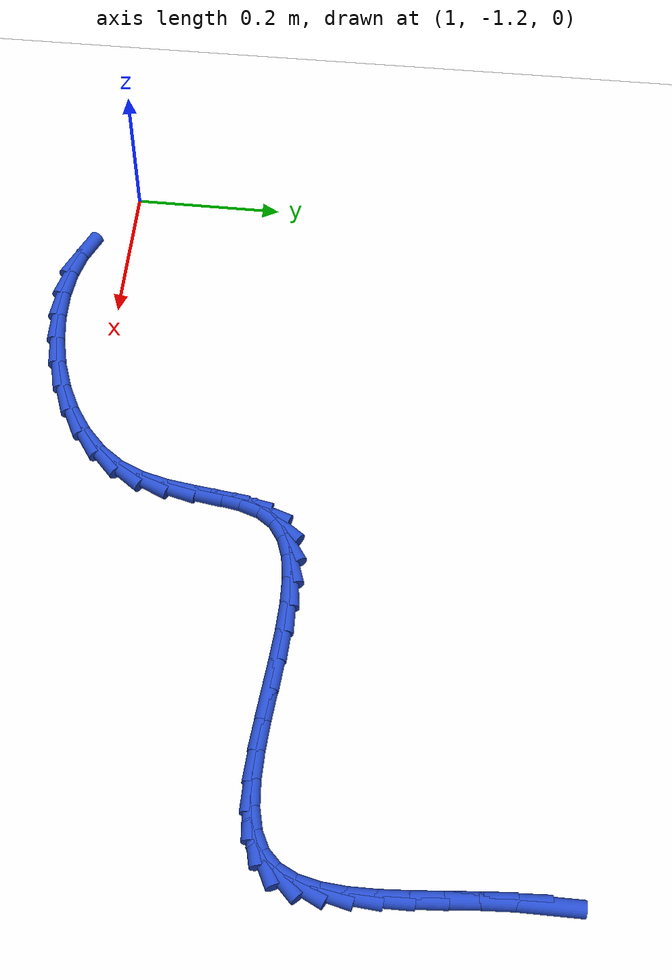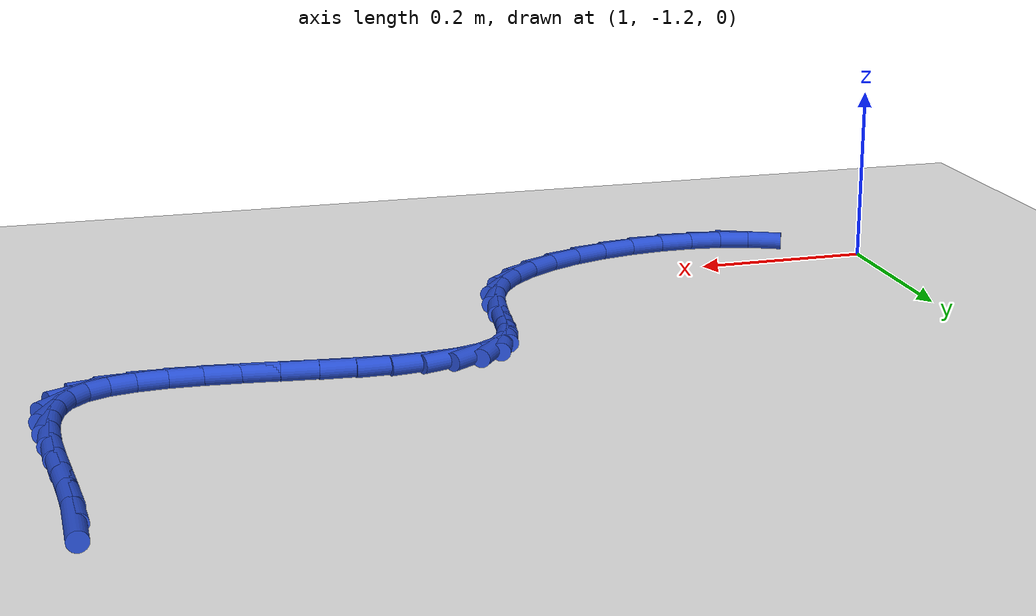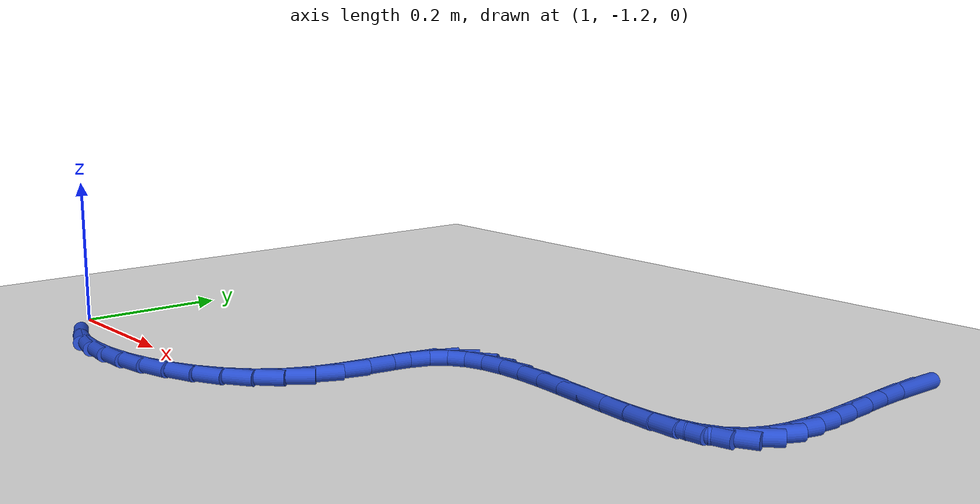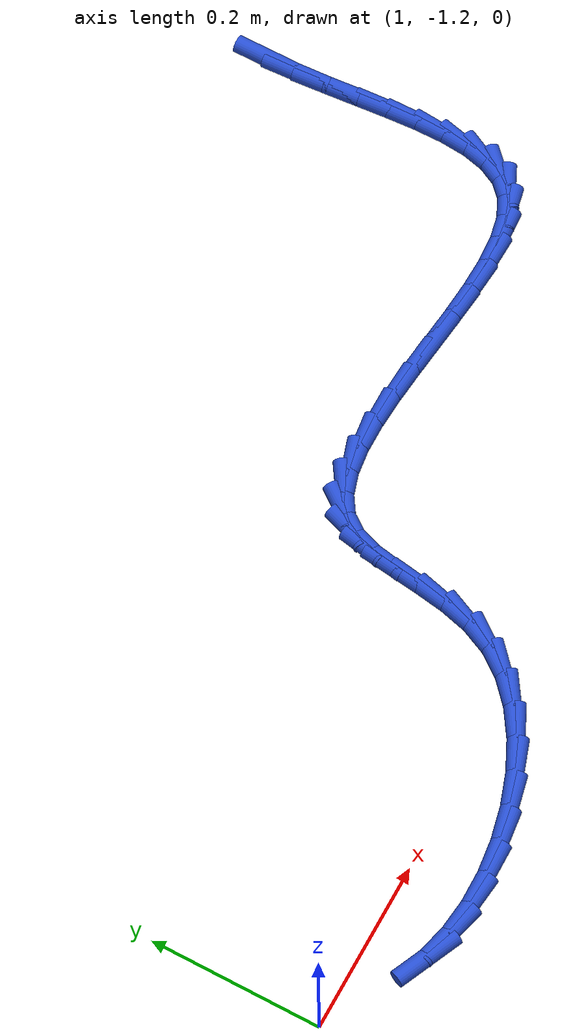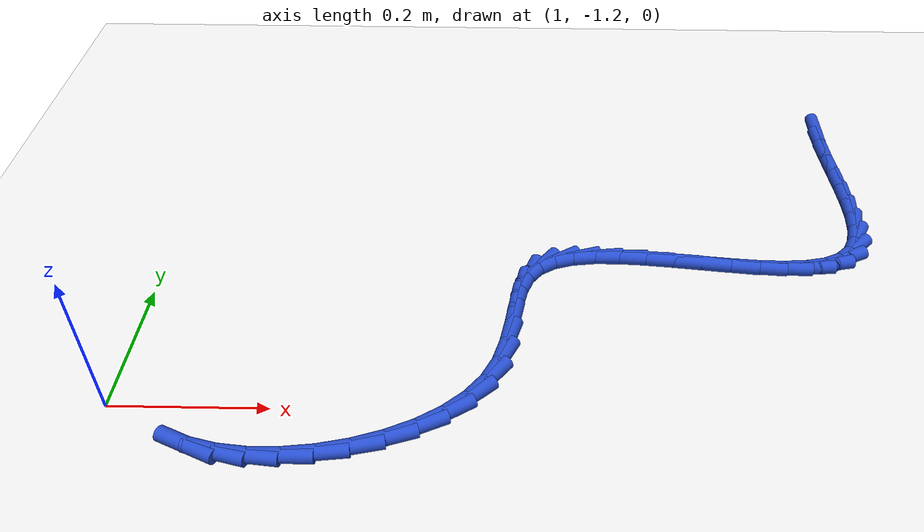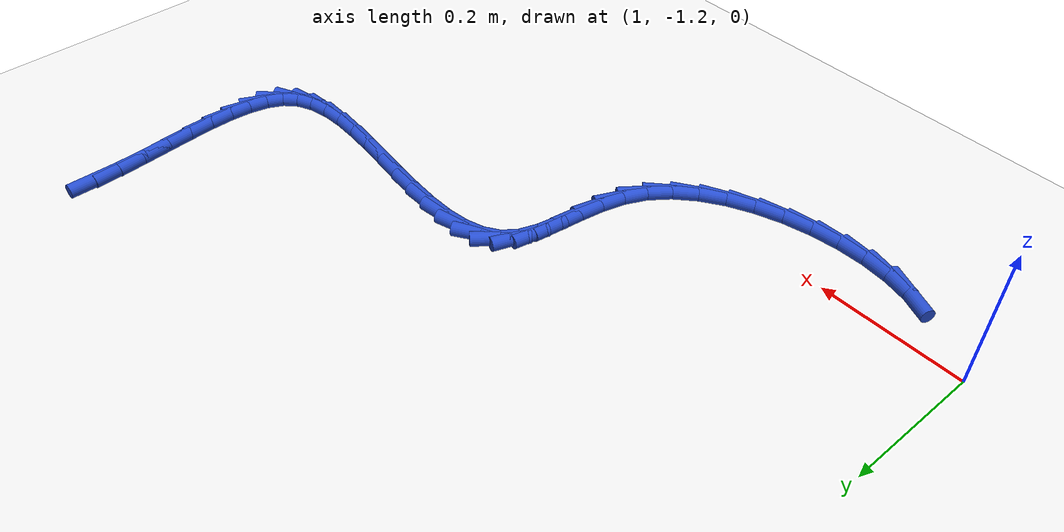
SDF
<sdf version="1.6">
 <world name="default">
  <model name="ground_plane">
   <static>1</static>
   <link name="link">
    <collision name="collision">
     <geometry><plane><normal>0 0 1</normal><size>100 100</size></plane></geometry>
     <surface><friction><ode><mu>100</mu><mu2>50</mu2></ode></friction></surface>
    </collision>
    <visual name="visual">
     <cast_shadows>0</cast_shadows>
     <geometry><plane><normal>0 0 1</normal><size>100 100</size></plane></geometry>
     <material>
      <script><uri>file://media/materials/scripts/gazebo.material</uri><name>Gazebo/WhiteGlow</name></script>
     </material>
    </visual>
   </link>
  </model>
  <model name="line">
   <link name="link_140">
    <pose>1.9676121689241 -0.609923376847804 0.01 0 1.57 1.5692304864770894</pose>
    <collision name="collision">
     <geometry><cylinder><radius>0.01</radius><length>0.08</length></cylinder></geometry>
    </collision>
    <visual name="visual">
     <material>
      <script><name>Gazebo/Blue</name><uri>file://media/materials/scripts/gazebo.material</uri></script>
     </material>
     <geometry><cylinder><radius>0.01</radius><length>0.08</length></cylinder></geometry>
    </visual>
   </link>
   <link name="link_141">
    <pose>1.9675563326440466 -0.6455823350341395 0.01 0 1.57 -1.518326134980468</pose>
    <collision name="collision">
     <geometry><cylinder><radius>0.01</radius><length>0.08</length></cylinder></geometry>
    </collision>
    <visual name="visual">
     <material>
      <script><name>Gazebo/Blue</name><uri>file://media/materials/scripts/gazebo.material</uri></script>
     </material>
     <geometry><cylinder><radius>0.01</radius><length>0.08</length></cylinder></geometry>
    </visual>
   </link>
   <link name="link_142">
    <pose>1.9695000412162742 -0.6825923863149759 0.01 0 1.57 -1.4916581907190145</pose>
    <collision name="collision">
     <geometry><cylinder><radius>0.01</radius><length>0.08</length></cylinder></geometry>
    </collision>
    <visual name="visual">
     <material>
      <script><name>Gazebo/Blue</name><uri>file://media/materials/scripts/gazebo.material</uri></script>
     </material>
     <geometry><cylinder><radius>0.01</radius><length>0.08</length></cylinder></geometry>
    </visual>
   </link>
   <link name="link_143">
    <pose>1.9724734283568273 -0.7200860323277587 0.01 0 1.57 -1.4892416868877896</pose>
    <collision name="collision">
     <geometry><cylinder><radius>0.01</radius><length>0.08</length></cylinder></geometry>
    </collision>
    <visual name="visual">
     <material>
      <script><name>Gazebo/Blue</name><uri>file://media/materials/scripts/gazebo.material</uri></script>
     </material>
     <geometry><cylinder><radius>0.01</radius><length>0.08</length></cylinder></geometry>
    </visual>
   </link>
   <link name="link_144">
    <pose>1.9755066277817512 -0.7571957747099342 0.01 0 1.57 -1.511656122698461</pose>
    <collision name="collision">
     <geometry><cylinder><radius>0.01</radius><length>0.08</length></cylinder></geometry>
    </collision>
    <visual name="visual">
     <material>
      <script><name>Gazebo/Blue</name><uri>file://media/materials/scripts/gazebo.material</uri></script>
     </material>
     <geometry><cylinder><radius>0.01</radius><length>0.08</length></cylinder></geometry>
    </visual>
   </link>
   <link name="link_145">
    <pose>1.9776297732070909 -0.7930541150989483 0.01 0 1.57 -1.563587525216265</pose>
    <collision name="collision">
     <geometry><cylinder><radius>0.01</radius><length>0.08</length></cylinder></geometry>
    </collision>
    <visual name="visual">
     <material>
      <script><name>Gazebo/Blue</name><uri>file://media/materials/scripts/gazebo.material</uri></script>
     </material>
     <geometry><cylinder><radius>0.01</radius><length>0.08</length></cylinder></geometry>
    </visual>
   </link>
   <link name="link_146">
    <pose>1.977872998348892 -0.8267935551322472 0.01 0 1.57 1.4862405778517631</pose>
    <collision name="collision">
     <geometry><cylinder><radius>0.01</radius><length>0.08</length></cylinder></geometry>
    </collision>
    <visual name="visual">
     <material>
      <script><name>Gazebo/Blue</name><uri>file://media/materials/scripts/gazebo.material</uri></script>
     </material>
     <geometry><cylinder><radius>0.01</radius><length>0.08</length></cylinder></geometry>
    </visual>
   </link>
   <link name="link_147">
    <pose>1.9752664369231987 -0.8575465964472774 0.01 0 1.57 1.3362913895076682</pose>
    <collision name="collision">
     <geometry><cylinder><radius>0.01</radius><length>0.08</length></cylinder></geometry>
    </collision>
    <visual name="visual">
     <material>
      <script><name>Gazebo/Blue</name><uri>file://media/materials/scripts/gazebo.material</uri></script>
     </material>
     <geometry><cylinder><radius>0.01</radius><length>0.08</length></cylinder></geometry>
    </visual>
   </link>
   <link name="link_148">
    <pose>1.9688402226460568 -0.8844457406814837 0.01 0 1.57 1.1025831131309387</pose>
    <collision name="collision">
     <geometry><cylinder><radius>0.01</radius><length>0.08</length></cylinder></geometry>
    </collision>
    <visual name="visual">
     <material>
      <script><name>Gazebo/Blue</name><uri>file://media/materials/scripts/gazebo.material</uri></script>
     </material>
     <geometry><cylinder><radius>0.01</radius><length>0.08</length></cylinder></geometry>
    </visual>
   </link>
   <link name="link_149">
    <pose>1.957624489233511 -0.9066234894723126 0.01 0 1.57 0.7749221417292437</pose>
    <collision name="collision">
     <geometry><cylinder><radius>0.01</radius><length>0.08</length></cylinder></geometry>
    </collision>
    <visual name="visual">
     <material>
      <script><name>Gazebo/Blue</name><uri>file://media/materials/scripts/gazebo.material</uri></script>
     </material>
     <geometry><cylinder><radius>0.01</radius><length>0.08</length></cylinder></geometry>
    </visual>
   </link>
   <link name="link_150">
    <pose>1.9406672859085614 -0.9232290754264477 0.01 0 1.57 0.4447990700205925</pose>
    <collision name="collision">
     <geometry><cylinder><radius>0.01</radius><length>0.08</length></cylinder></geometry>
    </collision>
    <visual name="visual">
     <material>
      <script><name>Gazebo/Blue</name><uri>file://media/materials/scripts/gazebo.material</uri></script>
     </material>
     <geometry><cylinder><radius>0.01</radius><length>0.08</length></cylinder></geometry>
    </visual>
   </link>
   <link name="link_151">
    <pose>1.917789819981604 -0.9341337695616988 0.01 0 1.57 0.2135807034820194</pose>
    <collision name="collision">
     <geometry><cylinder><radius>0.01</radius><length>0.08</length></cylinder></geometry>
    </collision>
    <visual name="visual">
     <material>
      <script><name>Gazebo/Blue</name><uri>file://media/materials/scripts/gazebo.material</uri></script>
     </material>
     <geometry><cylinder><radius>0.01</radius><length>0.08</length></cylinder></geometry>
    </visual>
   </link>
   <link name="link_152">
    <pose>1.8898644260725947 -0.940190471756593 0.01 0 1.57 0.06646694724918709</pose>
    <collision name="collision">
     <geometry><cylinder><radius>0.01</radius><length>0.08</length></cylinder></geometry>
    </collision>
    <visual name="visual">
     <material>
      <script><name>Gazebo/Blue</name><uri>file://media/materials/scripts/gazebo.material</uri></script>
     </material>
     <geometry><cylinder><radius>0.01</radius><length>0.08</length></cylinder></geometry>
    </visual>
   </link>
   <link name="link_153">
    <pose>1.857838597322433 -0.9423222710785557 0.01 0 1.57 -0.024726195959830867</pose>
    <collision name="collision">
     <geometry><cylinder><radius>0.01</radius><length>0.08</length></cylinder></geometry>
    </collision>
    <visual name="visual">
     <material>
      <script><name>Gazebo/Blue</name><uri>file://media/materials/scripts/gazebo.material</uri></script>
     </material>
     <geometry><cylinder><radius>0.01</radius><length>0.08</length></cylinder></geometry>
    </visual>
   </link>
   <link name="link_154">
    <pose>1.8226598268720169 -0.9414522565950116 0.01 0 1.57 -0.07871360746099239</pose>
    <collision name="collision">
     <geometry><cylinder><radius>0.01</radius><length>0.08</length></cylinder></geometry>
    </collision>
    <visual name="visual">
     <material>
      <script><name>Gazebo/Blue</name><uri>file://media/materials/scripts/gazebo.material</uri></script>
     </material>
     <geometry><cylinder><radius>0.01</radius><length>0.08</length></cylinder></geometry>
    </visual>
   </link>
   <link name="link_155">
    <pose>1.7852756078622454 -0.9385035173733866 0.01 0 1.57 -0.10581816235380348</pose>
    <collision name="collision">
     <geometry><cylinder><radius>0.01</radius><length>0.08</length></cylinder></geometry>
    </collision>
    <visual name="visual">
     <material>
      <script><name>Gazebo/Blue</name><uri>file://media/materials/scripts/gazebo.material</uri></script>
     </material>
     <geometry><cylinder><radius>0.01</radius><length>0.08</length></cylinder></geometry>
    </visual>
   </link>
   <link name="link_156">
    <pose>1.7466334334340192 -0.9343991424811056 0.01 0 1.57 -0.11088166288076765</pose>
    <collision name="collision">
     <geometry><cylinder><radius>0.01</radius><length>0.08</length></cylinder></geometry>
    </collision>
    <visual name="visual">
     <material>
      <script><name>Gazebo/Blue</name><uri>file://media/materials/scripts/gazebo.material</uri></script>
     </material>
     <geometry><cylinder><radius>0.01</radius><length>0.08</length></cylinder></geometry>
    </visual>
   </link>
   <link name="link_157">
    <pose>1.7076807967282364 -0.9300622209855935 0.01 0 1.57 -0.09488119201472095</pose>
    <collision name="collision">
     <geometry><cylinder><radius>0.01</radius><length>0.08</length></cylinder></geometry>
    </collision>
    <visual name="visual">
     <material>
      <script><name>Gazebo/Blue</name><uri>file://media/materials/scripts/gazebo.material</uri></script>
     </material>
     <geometry><cylinder><radius>0.01</radius><length>0.08</length></cylinder></geometry>
    </visual>
   </link>
   <link name="link_158">
    <pose>1.669365190885795 -0.926415841954276 0.01 0 1.57 -0.05528495201471022</pose>
    <collision name="collision">
     <geometry><cylinder><radius>0.01</radius><length>0.08</length></cylinder></geometry>
    </collision>
    <visual name="visual">
     <material>
      <script><name>Gazebo/Blue</name><uri>file://media/materials/scripts/gazebo.material</uri></script>
     </material>
     <geometry><cylinder><radius>0.01</radius><length>0.08</length></cylinder></geometry>
    </visual>
   </link>
   <link name="link_159">
    <pose>1.632634109047596 -0.9243830944545781 0.01 0 1.57 0.014735391951520621</pose>
    <collision name="collision">
     <geometry><cylinder><radius>0.01</radius><length>0.08</length></cylinder></geometry>
    </collision>
    <visual name="visual">
     <material>
      <script><name>Gazebo/Blue</name><uri>file://media/materials/scripts/gazebo.material</uri></script>
     </material>
     <geometry><cylinder><radius>0.01</radius><length>0.08</length></cylinder></geometry>
    </visual>
   </link>
   <link name="link_160">
    <pose>1.598435044354537 -0.9248870675539251 0.01 0 1.57 0.12832224449451998</pose>
    <collision name="collision">
     <geometry><cylinder><radius>0.01</radius><length>0.08</length></cylinder></geometry>
    </collision>
    <visual name="visual">
     <material>
      <script><name>Gazebo/Blue</name><uri>file://media/materials/scripts/gazebo.material</uri></script>
     </material>
     <geometry><cylinder><radius>0.01</radius><length>0.08</length></cylinder></geometry>
    </visual>
   </link>
   <link name="link_161">
    <pose>1.567715489947517 -0.9288508503197419 0.01 0 1.57 0.30739194207258724</pose>
    <collision name="collision">
     <geometry><cylinder><radius>0.01</radius><length>0.08</length></cylinder></geometry>
    </collision>
    <visual name="visual">
     <material>
      <script><name>Gazebo/Blue</name><uri>file://media/materials/scripts/gazebo.material</uri></script>
     </material>
     <geometry><cylinder><radius>0.01</radius><length>0.08</length></cylinder></geometry>
    </visual>
   </link>
   <link name="link_162">
    <pose>1.5414229389674348 -0.9371975318194542 0.01 0 1.57 0.5782526817857558</pose>
    <collision name="collision">
     <geometry><cylinder><radius>0.01</radius><length>0.08</length></cylinder></geometry>
    </collision>
    <visual name="visual">
     <material>
      <script><name>Gazebo/Blue</name><uri>file://media/materials/scripts/gazebo.material</uri></script>
     </material>
     <geometry><cylinder><radius>0.01</radius><length>0.08</length></cylinder></geometry>
    </visual>
   </link>
   <link name="link_163">
    <pose>1.5205048845551912 -0.950850201120487 0.01 0 1.57 0.9346391346036947</pose>
    <collision name="collision">
     <geometry><cylinder><radius>0.01</radius><length>0.08</length></cylinder></geometry>
    </collision>
    <visual name="visual">
     <material>
      <script><name>Gazebo/Blue</name><uri>file://media/materials/scripts/gazebo.material</uri></script>
     </material>
     <geometry><cylinder><radius>0.01</radius><length>0.08</length></cylinder></geometry>
    </visual>
   </link>
   <link name="link_164">
    <pose>1.5058530112106103 -0.9706878882355335 0.01 0 1.57 1.2351852532280605</pose>
    <collision name="collision">
     <geometry><cylinder><radius>0.01</radius><length>0.08</length></cylinder></geometry>
    </collision>
    <visual name="visual">
     <material>
      <script><name>Gazebo/Blue</name><uri>file://media/materials/scripts/gazebo.material</uri></script>
     </material>
     <geometry><cylinder><radius>0.01</radius><length>0.08</length></cylinder></geometry>
    </visual>
   </link>
   <link name="link_165">
    <pose>1.4968774821406716 -0.9964200116893044 0.01 0 1.57 1.3902369936929668</pose>
    <collision name="collision">
     <geometry><cylinder><radius>0.01</radius><length>0.08</length></cylinder></geometry>
    </collision>
    <visual name="visual">
     <material>
      <script><name>Gazebo/Blue</name><uri>file://media/materials/scripts/gazebo.material</uri></script>
     </material>
     <geometry><cylinder><radius>0.01</radius><length>0.08</length></cylinder></geometry>
    </visual>
   </link>
   <link name="link_166">
    <pose>1.4913878513955598 -1.0264923626347027 0.01 0 1.57 1.4412083538622218</pose>
    <collision name="collision">
     <geometry><cylinder><radius>0.01</radius><length>0.08</length></cylinder></geometry>
    </collision>
    <visual name="visual">
     <material>
      <script><name>Gazebo/Blue</name><uri>file://media/materials/scripts/gazebo.material</uri></script>
     </material>
     <geometry><cylinder><radius>0.01</radius><length>0.08</length></cylinder></geometry>
    </visual>
   </link>
   <link name="link_167">
    <pose>1.4871140021720457 -1.0592878347517032 0.01 0 1.57 1.4149048666156512</pose>
    <collision name="collision">
     <geometry><cylinder><radius>0.01</radius><length>0.08</length></cylinder></geometry>
    </collision>
    <visual name="visual">
     <material>
      <script><name>Gazebo/Blue</name><uri>file://media/materials/scripts/gazebo.material</uri></script>
     </material>
     <geometry><cylinder><radius>0.01</radius><length>0.08</length></cylinder></geometry>
    </visual>
   </link>
   <link name="link_168">
    <pose>1.481785817666899 -1.0931893217202793 0.01 0 1.57 1.3172382056180914</pose>
    <collision name="collision">
     <geometry><cylinder><radius>0.01</radius><length>0.08</length></cylinder></geometry>
    </collision>
    <visual name="visual">
     <material>
      <script><name>Gazebo/Blue</name><uri>file://media/materials/scripts/gazebo.material</uri></script>
     </material>
     <geometry><cylinder><radius>0.01</radius><length>0.08</length></cylinder></geometry>
    </visual>
   </link>
   <link name="link_169">
    <pose>1.473133181076891 -1.126579717220406 0.01 0 1.57 1.1436171188026192</pose>
    <collision name="collision">
     <geometry><cylinder><radius>0.01</radius><length>0.08</length></cylinder></geometry>
    </collision>
    <visual name="visual">
     <material>
      <script><name>Gazebo/Blue</name><uri>file://media/materials/scripts/gazebo.material</uri></script>
     </material>
     <geometry><cylinder><radius>0.01</radius><length>0.08</length></cylinder></geometry>
    </visual>
   </link>
   <link name="link_170">
    <pose>1.4588995700740215 -1.1578478561138028 0.01 0 1.57 0.9295638325341585</pose>
    <collision name="collision">
     <geometry><cylinder><radius>0.01</radius><length>0.08</length></cylinder></geometry>
    </collision>
    <visual name="visual">
     <material>
      <script><name>Gazebo/Blue</name><uri>file://media/materials/scripts/gazebo.material</uri></script>
     </material>
     <geometry><cylinder><radius>0.01</radius><length>0.08</length></cylinder></geometry>
    </visual>
   </link>
   <link name="link_171">
    <pose>1.4379726923595577 -1.1858826351216805 0.01 0 1.57 0.7429883829676419</pose>
    <collision name="collision">
     <geometry><cylinder><radius>0.01</radius><length>0.08</length></cylinder></geometry>
    </collision>
    <visual name="visual">
     <material>
      <script><name>Gazebo/Blue</name><uri>file://media/materials/scripts/gazebo.material</uri></script>
     </material>
     <geometry><cylinder><radius>0.01</radius><length>0.08</length></cylinder></geometry>
    </visual>
   </link>
   <link name="link_172">
    <pose>1.4112340785507413 -1.2104443096687996 0.01 0 1.57 0.5870592961736075</pose>
    <collision name="collision">
     <geometry><cylinder><radius>0.01</radius><length>0.08</length></cylinder></geometry>
    </collision>
    <visual name="visual">
     <material>
      <script><name>Gazebo/Blue</name><uri>file://media/materials/scripts/gazebo.material</uri></script>
     </material>
     <geometry><cylinder><radius>0.01</radius><length>0.08</length></cylinder></geometry>
    </visual>
   </link>
   <link name="link_173">
    <pose>1.3797653776084944 -1.2313805927264787 0.01 0 1.57 0.45449460166837485</pose>
    <collision name="collision">
     <geometry><cylinder><radius>0.01</radius><length>0.08</length></cylinder></geometry>
    </collision>
    <visual name="visual">
     <material>
      <script><name>Gazebo/Blue</name><uri>file://media/materials/scripts/gazebo.material</uri></script>
     </material>
     <geometry><cylinder><radius>0.01</radius><length>0.08</length></cylinder></geometry>
    </visual>
   </link>
   <link name="link_174">
    <pose>1.3446482384937404 -1.2485391972660373 0.01 0 1.57 0.337602741867074</pose>
    <collision name="collision">
     <geometry><cylinder><radius>0.01</radius><length>0.08</length></cylinder></geometry>
    </collision>
    <visual name="visual">
     <material>
      <script><name>Gazebo/Blue</name><uri>file://media/materials/scripts/gazebo.material</uri></script>
     </material>
     <geometry><cylinder><radius>0.01</radius><length>0.08</length></cylinder></geometry>
    </visual>
   </link>
   <link name="link_175">
    <pose>1.3069643101674009 -1.2617678362587943 0.01 0 1.57 0.2293998882613263</pose>
    <collision name="collision">
     <geometry><cylinder><radius>0.01</radius><length>0.08</length></cylinder></geometry>
    </collision>
    <visual name="visual">
     <material>
      <script><name>Gazebo/Blue</name><uri>file://media/materials/scripts/gazebo.material</uri></script>
     </material>
     <geometry><cylinder><radius>0.01</radius><length>0.08</length></cylinder></geometry>
    </visual>
   </link>
   <link name="link_176">
    <pose>1.267795241590399 -1.2709142226760695 0.01 0 1.57 0.12349094501751166</pose>
    <collision name="collision">
     <geometry><cylinder><radius>0.01</radius><length>0.08</length></cylinder></geometry>
    </collision>
    <visual name="visual">
     <material>
      <script><name>Gazebo/Blue</name><uri>file://media/materials/scripts/gazebo.material</uri></script>
     </material>
     <geometry><cylinder><radius>0.01</radius><length>0.08</length></cylinder></geometry>
    </visual>
   </link>
   <link name="link_177">
    <pose>1.2282226817236561 -1.2758260694891812 0.01 0 1.57 0.013497785432683665</pose>
    <collision name="collision">
     <geometry><cylinder><radius>0.01</radius><length>0.08</length></cylinder></geometry>
    </collision>
    <visual name="visual">
     <material>
      <script><name>Gazebo/Blue</name><uri>file://media/materials/scripts/gazebo.material</uri></script>
     </material>
     <geometry><cylinder><radius>0.01</radius><length>0.08</length></cylinder></geometry>
    </visual>
   </link>
   <link name="link_178">
    <pose>1.189328279528097 -1.2763510896694492 0.01 0 1.57 -0.10767769600977038</pose>
    <collision name="collision">
     <geometry><cylinder><radius>0.01</radius><length>0.08</length></cylinder></geometry>
    </collision>
    <visual name="visual">
     <material>
      <script><name>Gazebo/Blue</name><uri>file://media/materials/scripts/gazebo.material</uri></script>
     </material>
     <geometry><cylinder><radius>0.01</radius><length>0.08</length></cylinder></geometry>
    </visual>
   </link>
   <link name="link_179">
    <pose>1.1521936839646438 -1.2723369961881927 0.01 0 1.57 -0.24860384446210748</pose>
    <collision name="collision">
     <geometry><cylinder><radius>0.01</radius><length>0.08</length></cylinder></geometry>
    </collision>
    <visual name="visual">
     <material>
      <script><name>Gazebo/Blue</name><uri>file://media/materials/scripts/gazebo.material</uri></script>
     </material>
     <geometry><cylinder><radius>0.01</radius><length>0.08</length></cylinder></geometry>
    </visual>
   </link>
   <link name="link_180">
    <pose>1.1179005439942182 -1.2636315020167304 0.01 0 1.57 -0.41963641155854475</pose>
    <collision name="collision">
     <geometry><cylinder><radius>0.01</radius><length>0.08</length></cylinder></geometry>
    </collision>
    <visual name="visual">
     <material>
      <script><name>Gazebo/Blue</name><uri>file://media/materials/scripts/gazebo.material</uri></script>
     </material>
     <geometry><cylinder><radius>0.01</radius><length>0.08</length></cylinder></geometry>
    </visual>
   </link>
  </model>
 </world>
</sdf>
